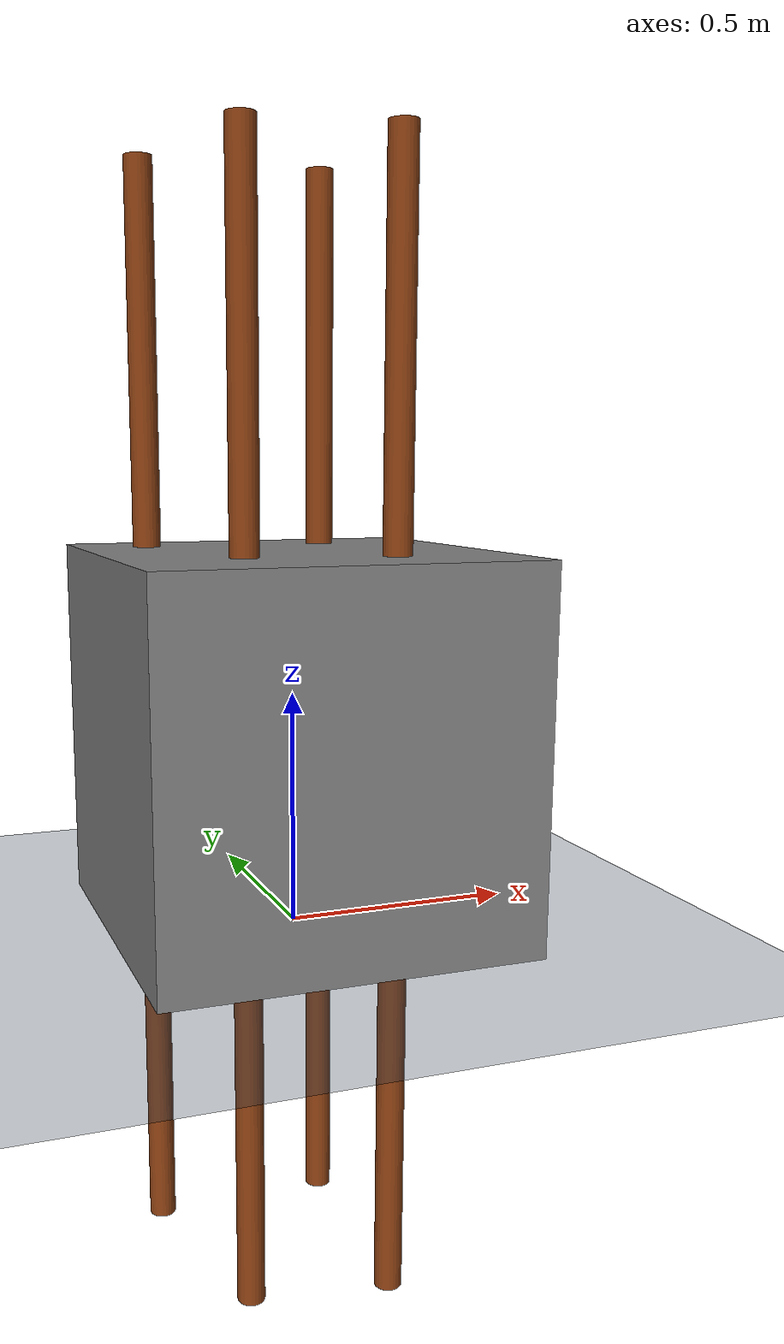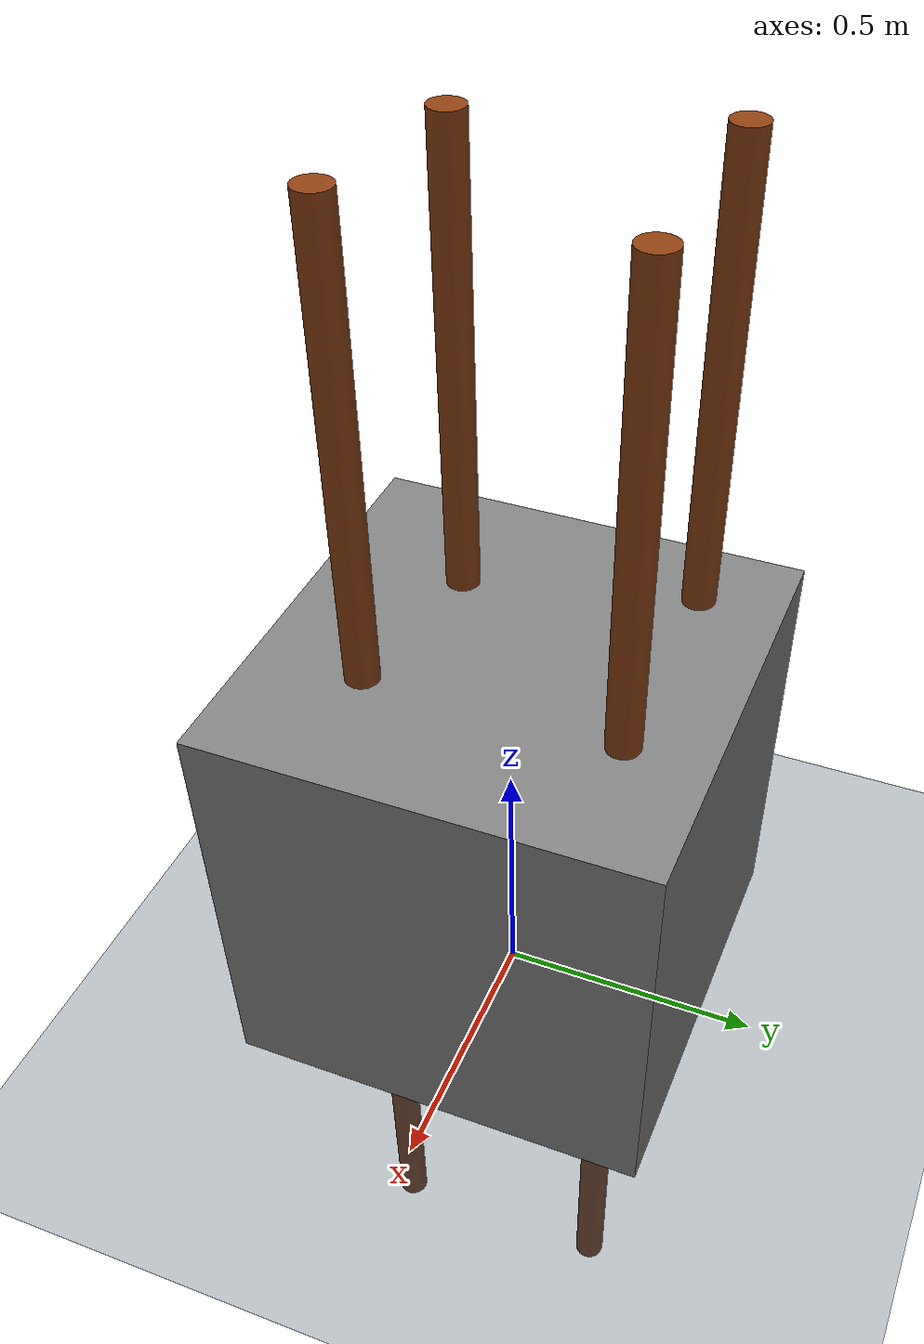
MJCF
<mujoco model="table_arena">
  <asset>
    <texture builtin="gradient" height="256" rgb1=".9 .9 1." rgb2=".2 .3 .4" type="skybox" width="256"/>
    <texture builtin="checker" height="512" name="texplane" rgb1=".2 .3 .4" rgb2=".1 0.15 0.2" type="2d" width="512"/>
    <material name="floorplane" reflectance="0.5" texrepeat="1 1" texture="texplane" texuniform="true"/>
</asset>

  <default>
    <default class="obstacle">
        <geom conaffinity="1" contype="0" rgba="0.55 0.25 0.07 1" pos="0 0 0" />
    </default>
  </default>

  <worldbody>
    <geom condim="3" material="floorplane" name="floor" pos="0 0 0" size="3 3 .125" type="plane"/>
    <body name="table" pos="0 0 0.4">
      <geom pos="0 0 0" size="0.4 0.4 0.4" type="box" name="table_collision" friction="1 0.005 0.0001"/>
      <geom pos="0 0 0" size="0.4 0.4 0.4" type="box" conaffinity="0" contype="0" group="1" name="table_visual"/>
      <site pos="0 0 0.4" name="table_top" size="0.001 0.001 0.001" rgba="0 0 0 0"/>
    </body>

    <body name="obstacle1" pos="0.15 0.25 0.4">
        <geom name="obstacle1_geom" size="0.03 1.2" type="cylinder" class="obstacle" />
    </body>
    <body name="obstacle2" pos="-0.15 -0.15 0.4">
        <geom name="obstacle2_geom" size="0.03 1.2" type="cylinder" class="obstacle" />
    </body>
    <body name="obstacle3" pos="0.15 -0.20 0.4">
        <geom name="obstacle3_geom" size="0.03 1.2" type="cylinder" class="obstacle" />
    </body>
    <body name="obstacle4" pos="-0.25 0.25 0.4">
        <geom name="obstacle4_geom" size="0.03 1.2" type="cylinder" class="obstacle" />
    </body>

    <light diffuse=".8 .8 .8" dir="0 -.15 -1" directional="false" pos="1 1 4.0" specular="0.3 0.3 0.3" castshadow="false"/>
    <light diffuse=".8 .8 .8" dir="0 -.15 -1" directional="false" pos="-3. -3. 4.0" specular="0.3 0.3 0.3" castshadow="false"/>
    <!-- front view -->
    <camera mode="fixed" name="frontview" pos="1.6 0 1.45" quat="0.56 0.43 0.43 0.56"/>
    <!-- bird view -->
    <camera mode="fixed" name="birdview" pos="-0.2 0 3.0" quat="0.7071 0 0 0.7071"/>
    <!-- agent view -->
    <camera mode="fixed" name="agentview" pos="0.5 0 1.35" quat="0.653 0.271 0.271 0.653"/>
  </worldbody>
</mujoco>
